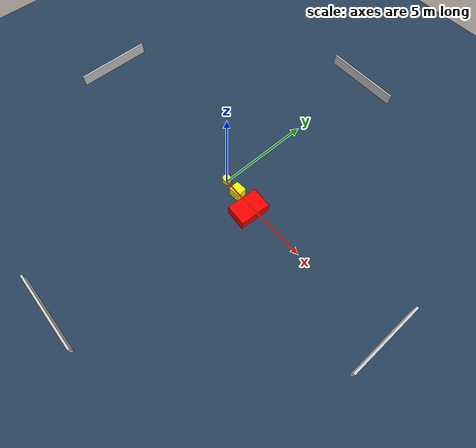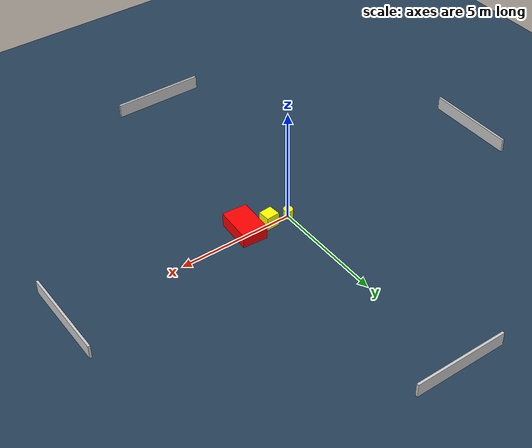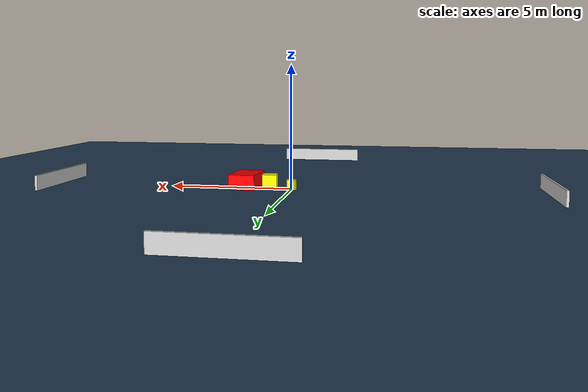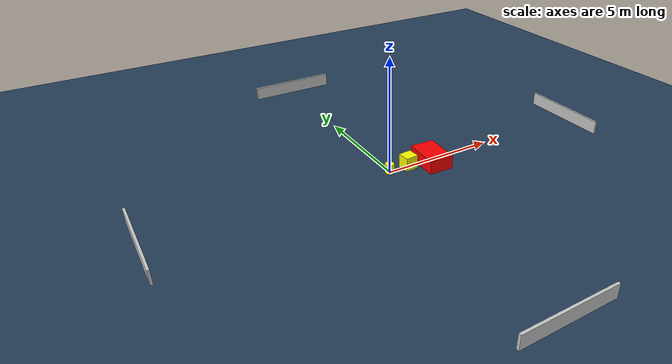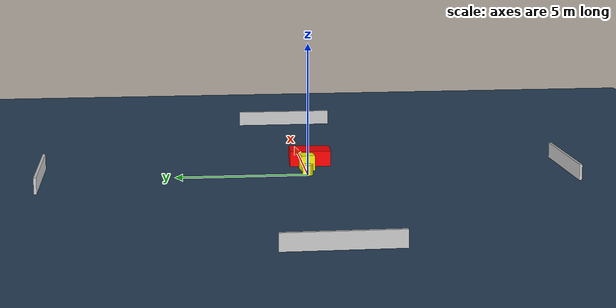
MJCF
<?xml version="1.0" ?>
<mujoco model="generated_environment">
  <option timestep="0.01" integrator="RK4" cone="elliptic"/>
  <default>
    <geom density="1"/>
  </default>
  <asset>
    <texture builtin="gradient" height="3072" name="skybox" rgb1="0.3 0.5 0.7" rgb2="0 0 0" type="skybox" width="512"/>
    <texture builtin="checker" height="300" name="groundplane" rgb1="0.2 0.3 0.4" rgb2="0.1 0.2 0.3" type="2d" width="300"/>
    <material name="groundplane" reflectance="0.2" texrepeat="5 5" texture="groundplane"/>
  </asset>
  <worldbody>
    <light dir="0 0 -1" directional="true" pos="0 0 1.5"/>
    <geom condim="3" friction="0.5 0.005 0.001" material="groundplane" name="floor" pos="0 0 0" size="0 0 0.05" type="plane"/>
    <body name="walls">
      <geom name="wall_1" condim="4" pos="-10.0 0.0 0.3" rgba="0.800000011920929 0.800000011920929 0.800000011920929 1.0" size="0.05 2.0 0.3" type="box"/>
      <geom name="wall_2" condim="4" pos="10.0 0.0 0.3" rgba="0.800000011920929 0.800000011920929 0.800000011920929 1.0" size="0.05 2.0 0.3" type="box"/>
      <geom name="wall_3" condim="4" pos="0.0 -10.0 0.3" rgba="0.800000011920929 0.800000011920929 0.800000011920929 1.0" size="2.0 0.05 0.3" type="box"/>
      <geom name="wall_4" condim="4" pos="0.0 10.0 0.3" rgba="0.800000011920929 0.800000011920929 0.800000011920929 1.0" size="2.0 0.05 0.3" type="box"/>
    </body>
    <body name="robot">
      <joint name="joint_x" type="slide" pos="0 0 0" axis="1 0 0"/>
      <joint name="joint_y" type="slide" pos="0 0 0" axis="0 1 0"/>
      <geom name="robot" type="cylinder" pos="0.0 0.0 0.2" size="0.2 0.2 0.0" mass="5.0" friction="1.0 0.005 0.0001" condim="4" rgba="1.0 1.0 0.0 1.0"/>
    </body>
    <body name="obstacle_1_movable">
      <geom name="obstacle_1_movable" condim="4" pos="0.8892145492596243 -0.061280340057139816 0.3" euler="0 0 4.465439056496394" friction="0.0 0.005 0.001" rgba="1.0 1.0 0.0 1.0" size="0.28620813447715854 0.2650096400708584 0.3" type="box" mass="0.1"/>
      <joint type="free"/>
    </body>
    <body name="obstacle_2_static">
      <geom name="obstacle_2_static" condim="4" pos="1.916370612898866 -0.27645539176562167 0.3" euler="0 0 86.75645610160909" friction="0.0 0.005 0.001" rgba="1.0 0.0 0.0 1.0" size="0.794265542231186 0.5365967786864065 0.3" type="box"/>
    </body>
  </worldbody>
  <actuator>
    <motor name="actuator_x" joint="joint_x" gear="1" ctrlrange="-1 1"/>
    <motor name="actuator_y" joint="joint_y" gear="1" ctrlrange="-1 1"/>
  </actuator>
</mujoco>
